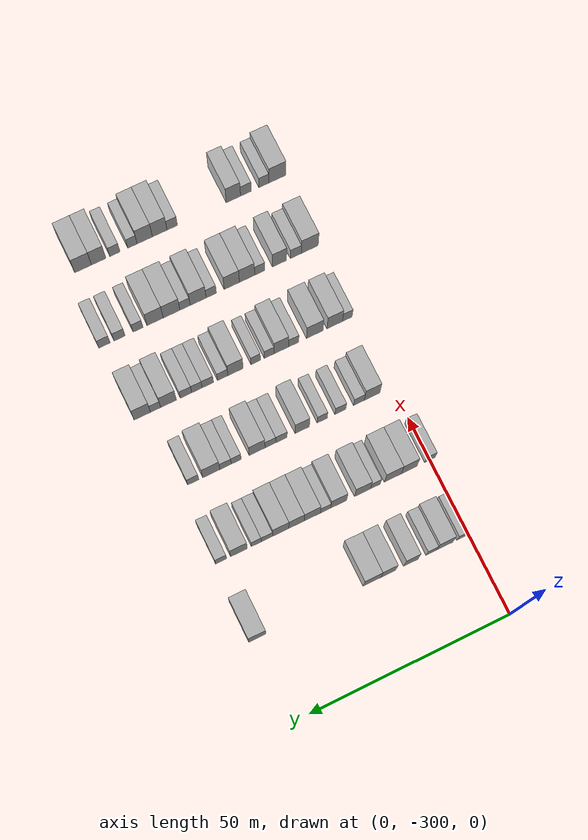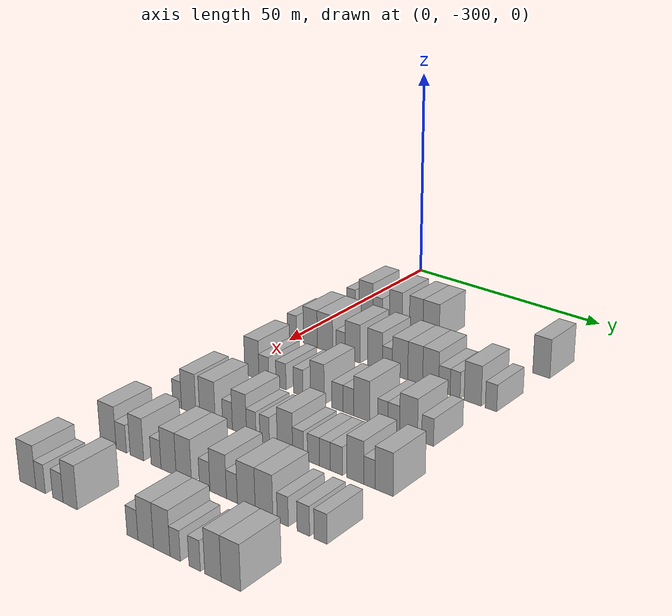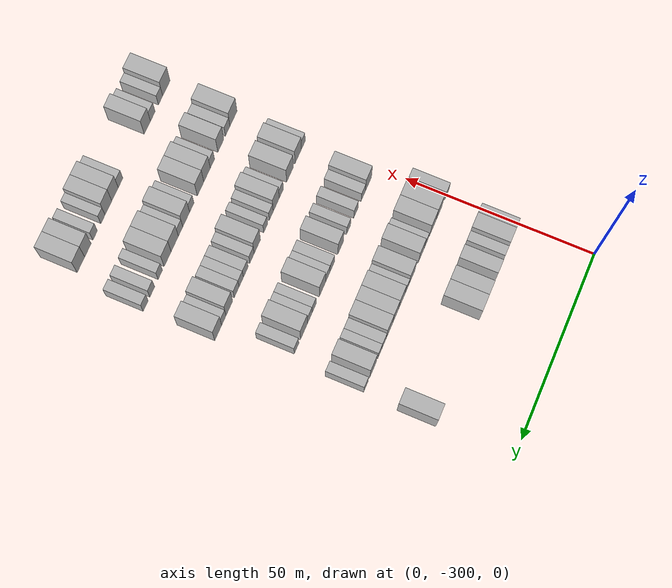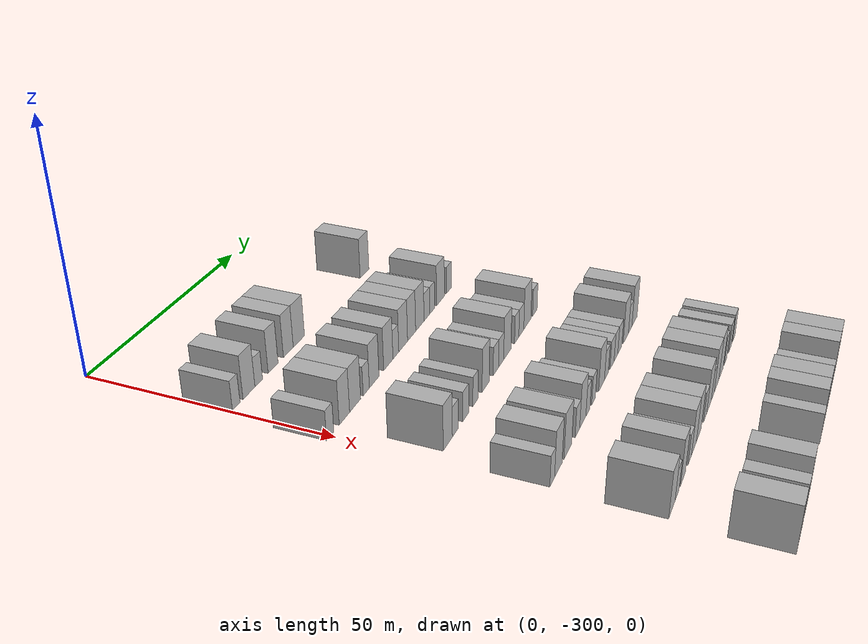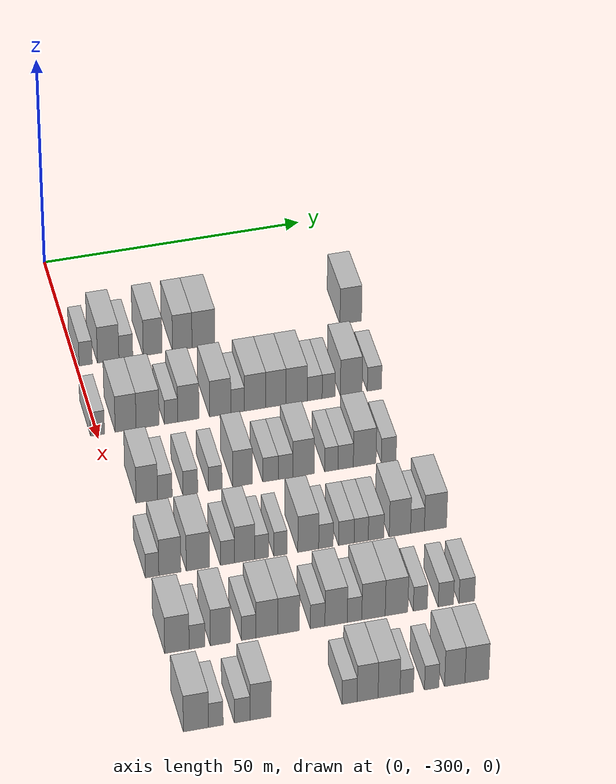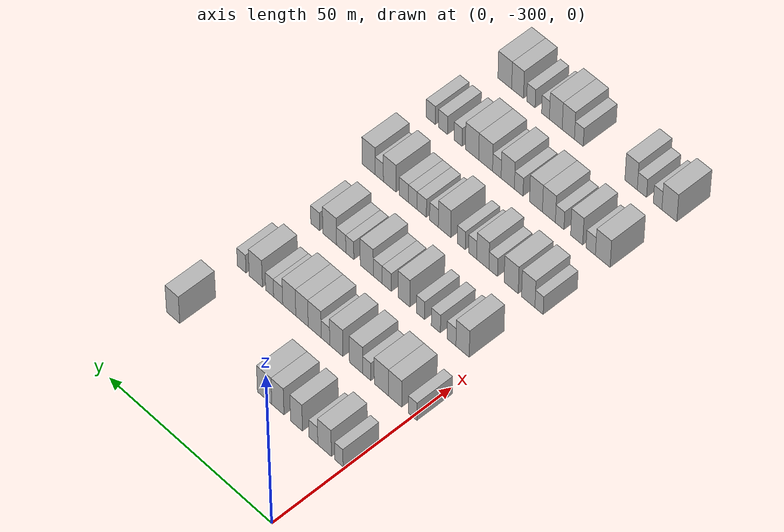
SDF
<sdf version="1.6">
 <world name="default">
  <model name="building_13">
   <static>1</static>
   <pose>25.0000 -298.2506 0 0.000000 0.000000 0.000000</pose>
   <link name="link">
    <pose>0 0 3.00 0 0 0</pose>
    <collision name="collision"><geometry><box><size>10.0000 2.5081 6.0000</size></box></geometry></collision>
    <visual name="visual">
     <cast_shadows>0</cast_shadows>
     <geometry><box><size>10.0000 2.5081 6.0000</size></box></geometry>
     <material>
      <script>
       <uri>model://HANNAS_wall/materials/scripts</uri>
       <uri>model://HANNAS_wall/materials/textures</uri>
       <name>vrc/HANNAS_wall</name>
      </script>
     </material>
    </visual>
   </link>
  </model>
  <model name="building_14">
   <static>1</static>
   <pose>25.0000 -293.9473 0 0.000000 0.000000 0.000000</pose>
   <link name="link">
    <pose>0 0 4.50 0 0 0</pose>
    <collision name="collision"><geometry><box><size>10.0000 4.0985 9.0000</size></box></geometry></collision>
    <visual name="visual">
     <cast_shadows>0</cast_shadows>
     <geometry><box><size>10.0000 4.0985 9.0000</size></box></geometry>
     <material>
      <script>
       <uri>model://HANNAS_wall/materials/scripts</uri>
       <uri>model://HANNAS_wall/materials/textures</uri>
       <name>vrc/HANNAS_wall</name>
      </script>
     </material>
    </visual>
   </link>
  </model>
  <model name="building_15">
   <static>1</static>
   <pose>25.0000 -290.5645 0 0.000000 0.000000 0.000000</pose>
   <link name="link">
    <pose>0 0 3.00 0 0 0</pose>
    <collision name="collision"><geometry><box><size>10.0000 2.6670 6.0000</size></box></geometry></collision>
    <visual name="visual">
     <cast_shadows>0</cast_shadows>
     <geometry><box><size>10.0000 2.6670 6.0000</size></box></geometry>
     <material>
      <script>
       <uri>model://HANNAS_wall/materials/scripts</uri>
       <uri>model://HANNAS_wall/materials/textures</uri>
       <name>vrc/HANNAS_wall</name>
      </script>
     </material>
    </visual>
   </link>
  </model>
  <model name="building_16">
   <static>1</static>
   <pose>25.0000 -285.4173 0 0.000000 0.000000 0.000000</pose>
   <link name="link">
    <pose>0 0 4.50 0 0 0</pose>
    <collision name="collision"><geometry><box><size>10.0000 3.6275 9.0000</size></box></geometry></collision>
    <visual name="visual">
     <cast_shadows>0</cast_shadows>
     <geometry><box><size>10.0000 3.6275 9.0000</size></box></geometry>
     <material>
      <script>
       <uri>model://HANNAS_wall/materials/scripts</uri>
       <uri>model://HANNAS_wall/materials/textures</uri>
       <name>vrc/HANNAS_wall</name>
      </script>
     </material>
    </visual>
   </link>
  </model>
  <model name="building_17">
   <static>1</static>
   <pose>25.0000 -279.7335 0 0.000000 0.000000 0.000000</pose>
   <link name="link">
    <pose>0 0 4.50 0 0 0</pose>
    <collision name="collision"><geometry><box><size>10.0000 3.7400 9.0000</size></box></geometry></collision>
    <visual name="visual">
     <cast_shadows>0</cast_shadows>
     <geometry><box><size>10.0000 3.7400 9.0000</size></box></geometry>
     <material>
      <script>
       <uri>model://HANNAS_wall/materials/scripts</uri>
       <uri>model://HANNAS_wall/materials/textures</uri>
       <name>vrc/HANNAS_wall</name>
      </script>
     </material>
    </visual>
   </link>
  </model>
  <model name="building_18">
   <static>1</static>
   <pose>25.0000 -275.6532 0 0.000000 0.000000 0.000000</pose>
   <link name="link">
    <pose>0 0 4.50 0 0 0</pose>
    <collision name="collision"><geometry><box><size>10.0000 4.4206 9.0000</size></box></geometry></collision>
    <visual name="visual">
     <cast_shadows>0</cast_shadows>
     <geometry><box><size>10.0000 4.4206 9.0000</size></box></geometry>
     <material>
      <script>
       <uri>model://HANNAS_wall/materials/scripts</uri>
       <uri>model://HANNAS_wall/materials/textures</uri>
       <name>vrc/HANNAS_wall</name>
      </script>
     </material>
    </visual>
   </link>
  </model>
  <model name="building_19">
   <static>1</static>
   <pose>25.0000 -247.1640 0 0.000000 0.000000 0.000000</pose>
   <link name="link">
    <pose>0 0 4.50 0 0 0</pose>
    <collision name="collision"><geometry><box><size>10.0000 4.1859 9.0000</size></box></geometry></collision>
    <visual name="visual">
     <cast_shadows>0</cast_shadows>
     <geometry><box><size>10.0000 4.1859 9.0000</size></box></geometry>
     <material>
      <script>
       <uri>model://HANNAS_wall/materials/scripts</uri>
       <uri>model://HANNAS_wall/materials/textures</uri>
       <name>vrc/HANNAS_wall</name>
      </script>
     </material>
    </visual>
   </link>
  </model>
  <model name="building_178">
   <static>1</static>
   <pose>44.0000 -299.9823 0 0.000000 0.000000 0.000000</pose>
   <link name="link">
    <pose>0 0 3.00 0 0 0</pose>
    <collision name="collision"><geometry><box><size>10.0000 2.6246 6.0000</size></box></geometry></collision>
    <visual name="visual">
     <cast_shadows>0</cast_shadows>
     <geometry><box><size>10.0000 2.6246 6.0000</size></box></geometry>
     <material>
      <script>
       <uri>model://HANNAS_wall/materials/scripts</uri>
       <uri>model://HANNAS_wall/materials/textures</uri>
       <name>vrc/HANNAS_wall</name>
      </script>
     </material>
    </visual>
   </link>
  </model>
  <model name="building_179">
   <static>1</static>
   <pose>44.0000 -294.6952 0 0.000000 0.000000 0.000000</pose>
   <link name="link">
    <pose>0 0 4.50 0 0 0</pose>
    <collision name="collision"><geometry><box><size>10.0000 3.9496 9.0000</size></box></geometry></collision>
    <visual name="visual">
     <cast_shadows>0</cast_shadows>
     <geometry><box><size>10.0000 3.9496 9.0000</size></box></geometry>
     <material>
      <script>
       <uri>model://HANNAS_wall/materials/scripts</uri>
       <uri>model://HANNAS_wall/materials/textures</uri>
       <name>vrc/HANNAS_wall</name>
      </script>
     </material>
    </visual>
   </link>
  </model>
  <model name="building_180">
   <static>1</static>
   <pose>44.0000 -290.5480 0 0.000000 0.000000 0.000000</pose>
   <link name="link">
    <pose>0 0 4.50 0 0 0</pose>
    <collision name="collision"><geometry><box><size>10.0000 4.3446 9.0000</size></box></geometry></collision>
    <visual name="visual">
     <cast_shadows>0</cast_shadows>
     <geometry><box><size>10.0000 4.3446 9.0000</size></box></geometry>
     <material>
      <script>
       <uri>model://HANNAS_wall/materials/scripts</uri>
       <uri>model://HANNAS_wall/materials/textures</uri>
       <name>vrc/HANNAS_wall</name>
      </script>
     </material>
    </visual>
   </link>
  </model>
  <model name="building_181">
   <static>1</static>
   <pose>44.0000 -286.1189 0 0.000000 0.000000 0.000000</pose>
   <link name="link">
    <pose>0 0 3.00 0 0 0</pose>
    <collision name="collision"><geometry><box><size>10.0000 2.5136 6.0000</size></box></geometry></collision>
    <visual name="visual">
     <cast_shadows>0</cast_shadows>
     <geometry><box><size>10.0000 2.5136 6.0000</size></box></geometry>
     <material>
      <script>
       <uri>model://HANNAS_wall/materials/scripts</uri>
       <uri>model://HANNAS_wall/materials/textures</uri>
       <name>vrc/HANNAS_wall</name>
      </script>
     </material>
    </visual>
   </link>
  </model>
  <model name="building_182">
   <static>1</static>
   <pose>44.0000 -282.8443 0 0.000000 0.000000 0.000000</pose>
   <link name="link">
    <pose>0 0 4.50 0 0 0</pose>
    <collision name="collision"><geometry><box><size>10.0000 4.0356 9.0000</size></box></geometry></collision>
    <visual name="visual">
     <cast_shadows>0</cast_shadows>
     <geometry><box><size>10.0000 4.0356 9.0000</size></box></geometry>
     <material>
      <script>
       <uri>model://HANNAS_wall/materials/scripts</uri>
       <uri>model://HANNAS_wall/materials/textures</uri>
       <name>vrc/HANNAS_wall</name>
      </script>
     </material>
    </visual>
   </link>
  </model>
  <model name="building_183">
   <static>1</static>
   <pose>44.0000 -276.8146 0 0.000000 0.000000 0.000000</pose>
   <link name="link">
    <pose>0 0 4.50 0 0 0</pose>
    <collision name="collision"><geometry><box><size>10.0000 4.0238 9.0000</size></box></geometry></collision>
    <visual name="visual">
     <cast_shadows>0</cast_shadows>
     <geometry><box><size>10.0000 4.0238 9.0000</size></box></geometry>
     <material>
      <script>
       <uri>model://HANNAS_wall/materials/scripts</uri>
       <uri>model://HANNAS_wall/materials/textures</uri>
       <name>vrc/HANNAS_wall</name>
      </script>
     </material>
    </visual>
   </link>
  </model>
  <model name="building_184">
   <static>1</static>
   <pose>44.0000 -273.4958 0 0.000000 0.000000 0.000000</pose>
   <link name="link">
    <pose>0 0 3.00 0 0 0</pose>
    <collision name="collision"><geometry><box><size>10.0000 2.6136 6.0000</size></box></geometry></collision>
    <visual name="visual">
     <cast_shadows>0</cast_shadows>
     <geometry><box><size>10.0000 2.6136 6.0000</size></box></geometry>
     <material>
      <script>
       <uri>model://HANNAS_wall/materials/scripts</uri>
       <uri>model://HANNAS_wall/materials/textures</uri>
       <name>vrc/HANNAS_wall</name>
      </script>
     </material>
    </visual>
   </link>
  </model>
  <model name="building_185">
   <static>1</static>
   <pose>44.0000 -270.1656 0 0.000000 0.000000 0.000000</pose>
   <link name="link">
    <pose>0 0 4.50 0 0 0</pose>
    <collision name="collision"><geometry><box><size>10.0000 4.0468 9.0000</size></box></geometry></collision>
    <visual name="visual">
     <cast_shadows>0</cast_shadows>
     <geometry><box><size>10.0000 4.0468 9.0000</size></box></geometry>
     <material>
      <script>
       <uri>model://HANNAS_wall/materials/scripts</uri>
       <uri>model://HANNAS_wall/materials/textures</uri>
       <name>vrc/HANNAS_wall</name>
      </script>
     </material>
    </visual>
   </link>
  </model>
  <model name="building_186">
   <static>1</static>
   <pose>44.0000 -266.2223 0 0.000000 0.000000 0.000000</pose>
   <link name="link">
    <pose>0 0 4.50 0 0 0</pose>
    <collision name="collision"><geometry><box><size>10.0000 3.8398 9.0000</size></box></geometry></collision>
    <visual name="visual">
     <cast_shadows>0</cast_shadows>
     <geometry><box><size>10.0000 3.8398 9.0000</size></box></geometry>
     <material>
      <script>
       <uri>model://HANNAS_wall/materials/scripts</uri>
       <uri>model://HANNAS_wall/materials/textures</uri>
       <name>vrc/HANNAS_wall</name>
      </script>
     </material>
    </visual>
   </link>
  </model>
  <model name="building_187">
   <static>1</static>
   <pose>44.0000 -262.2698 0 0.000000 0.000000 0.000000</pose>
   <link name="link">
    <pose>0 0 4.50 0 0 0</pose>
    <collision name="collision"><geometry><box><size>10.0000 4.0650 9.0000</size></box></geometry></collision>
    <visual name="visual">
     <cast_shadows>0</cast_shadows>
     <geometry><box><size>10.0000 4.0650 9.0000</size></box></geometry>
     <material>
      <script>
       <uri>model://HANNAS_wall/materials/scripts</uri>
       <uri>model://HANNAS_wall/materials/textures</uri>
       <name>vrc/HANNAS_wall</name>
      </script>
     </material>
    </visual>
   </link>
  </model>
  <model name="building_188">
   <static>1</static>
   <pose>44.0000 -258.8144 0 0.000000 0.000000 0.000000</pose>
   <link name="link">
    <pose>0 0 3.00 0 0 0</pose>
    <collision name="collision"><geometry><box><size>10.0000 2.8457 6.0000</size></box></geometry></collision>
    <visual name="visual">
     <cast_shadows>0</cast_shadows>
     <geometry><box><size>10.0000 2.8457 6.0000</size></box></geometry>
     <material>
      <script>
       <uri>model://HANNAS_wall/materials/scripts</uri>
       <uri>model://HANNAS_wall/materials/textures</uri>
       <name>vrc/HANNAS_wall</name>
      </script>
     </material>
    </visual>
   </link>
  </model>
  <model name="building_189">
   <static>1</static>
   <pose>44.0000 -256.1540 0 0.000000 0.000000 0.000000</pose>
   <link name="link">
    <pose>0 0 3.00 0 0 0</pose>
    <collision name="collision"><geometry><box><size>10.0000 2.4753 6.0000</size></box></geometry></collision>
    <visual name="visual">
     <cast_shadows>0</cast_shadows>
     <geometry><box><size>10.0000 2.4753 6.0000</size></box></geometry>
     <material>
      <script>
       <uri>model://HANNAS_wall/materials/scripts</uri>
       <uri>model://HANNAS_wall/materials/textures</uri>
       <name>vrc/HANNAS_wall</name>
      </script>
     </material>
    </visual>
   </link>
  </model>
  <model name="building_190">
   <static>1</static>
   <pose>44.0000 -251.8367 0 0.000000 0.000000 0.000000</pose>
   <link name="link">
    <pose>0 0 4.50 0 0 0</pose>
    <collision name="collision"><geometry><box><size>10.0000 4.1592 9.0000</size></box></geometry></collision>
    <visual name="visual">
     <cast_shadows>0</cast_shadows>
     <geometry><box><size>10.0000 4.1592 9.0000</size></box></geometry>
     <material>
      <script>
       <uri>model://HANNAS_wall/materials/scripts</uri>
       <uri>model://HANNAS_wall/materials/textures</uri>
       <name>vrc/HANNAS_wall</name>
      </script>
     </material>
    </visual>
   </link>
  </model>
  <model name="building_191">
   <static>1</static>
   <pose>44.0000 -247.3892 0 0.000000 0.000000 0.000000</pose>
   <link name="link">
    <pose>0 0 3.00 0 0 0</pose>
    <collision name="collision"><geometry><box><size>10.0000 2.7358 6.0000</size></box></geometry></collision>
    <visual name="visual">
     <cast_shadows>0</cast_shadows>
     <geometry><box><size>10.0000 2.7358 6.0000</size></box></geometry>
     <material>
      <script>
       <uri>model://HANNAS_wall/materials/scripts</uri>
       <uri>model://HANNAS_wall/materials/textures</uri>
       <name>vrc/HANNAS_wall</name>
      </script>
     </material>
    </visual>
   </link>
  </model>
  <model name="building_348">
   <static>1</static>
   <pose>63.0000 -294.8601 0 0.000000 0.000000 0.000000</pose>
   <link name="link">
    <pose>0 0 4.50 0 0 0</pose>
    <collision name="collision"><geometry><box><size>10.0000 3.9969 9.0000</size></box></geometry></collision>
    <visual name="visual">
     <cast_shadows>0</cast_shadows>
     <geometry><box><size>10.0000 3.9969 9.0000</size></box></geometry>
     <material>
      <script>
       <uri>model://HANNAS_wall/materials/scripts</uri>
       <uri>model://HANNAS_wall/materials/textures</uri>
       <name>vrc/HANNAS_wall</name>
      </script>
     </material>
    </visual>
   </link>
  </model>
  <model name="building_349">
   <static>1</static>
   <pose>63.0000 -291.5007 0 0.000000 0.000000 0.000000</pose>
   <link name="link">
    <pose>0 0 3.00 0 0 0</pose>
    <collision name="collision"><geometry><box><size>10.0000 2.7219 6.0000</size></box></geometry></collision>
    <visual name="visual">
     <cast_shadows>0</cast_shadows>
     <geometry><box><size>10.0000 2.7219 6.0000</size></box></geometry>
     <material>
      <script>
       <uri>model://HANNAS_wall/materials/scripts</uri>
       <uri>model://HANNAS_wall/materials/textures</uri>
       <name>vrc/HANNAS_wall</name>
      </script>
     </material>
    </visual>
   </link>
  </model>
  <model name="building_350">
   <static>1</static>
   <pose>63.0000 -286.7607 0 0.000000 0.000000 0.000000</pose>
   <link name="link">
    <pose>0 0 3.00 0 0 0</pose>
    <collision name="collision"><geometry><box><size>10.0000 2.7582 6.0000</size></box></geometry></collision>
    <visual name="visual">
     <cast_shadows>0</cast_shadows>
     <geometry><box><size>10.0000 2.7582 6.0000</size></box></geometry>
     <material>
      <script>
       <uri>model://HANNAS_wall/materials/scripts</uri>
       <uri>model://HANNAS_wall/materials/textures</uri>
       <name>vrc/HANNAS_wall</name>
      </script>
     </material>
    </visual>
   </link>
  </model>
  <model name="building_351">
   <static>1</static>
   <pose>63.0000 -282.1123 0 0.000000 0.000000 0.000000</pose>
   <link name="link">
    <pose>0 0 3.00 0 0 0</pose>
    <collision name="collision"><geometry><box><size>10.0000 2.5385 6.0000</size></box></geometry></collision>
    <visual name="visual">
     <cast_shadows>0</cast_shadows>
     <geometry><box><size>10.0000 2.5385 6.0000</size></box></geometry>
     <material>
      <script>
       <uri>model://HANNAS_wall/materials/scripts</uri>
       <uri>model://HANNAS_wall/materials/textures</uri>
       <name>vrc/HANNAS_wall</name>
      </script>
     </material>
    </visual>
   </link>
  </model>
  <model name="building_352">
   <static>1</static>
   <pose>63.0000 -277.0222 0 0.000000 0.000000 0.000000</pose>
   <link name="link">
    <pose>0 0 4.50 0 0 0</pose>
    <collision name="collision"><geometry><box><size>10.0000 3.6417 9.0000</size></box></geometry></collision>
    <visual name="visual">
     <cast_shadows>0</cast_shadows>
     <geometry><box><size>10.0000 3.6417 9.0000</size></box></geometry>
     <material>
      <script>
       <uri>model://HANNAS_wall/materials/scripts</uri>
       <uri>model://HANNAS_wall/materials/textures</uri>
       <name>vrc/HANNAS_wall</name>
      </script>
     </material>
    </visual>
   </link>
  </model>
  <model name="building_353">
   <static>1</static>
   <pose>63.0000 -271.7649 0 0.000000 0.000000 0.000000</pose>
   <link name="link">
    <pose>0 0 3.00 0 0 0</pose>
    <collision name="collision"><geometry><box><size>10.0000 2.8729 6.0000</size></box></geometry></collision>
    <visual name="visual">
     <cast_shadows>0</cast_shadows>
     <geometry><box><size>10.0000 2.8729 6.0000</size></box></geometry>
     <material>
      <script>
       <uri>model://HANNAS_wall/materials/scripts</uri>
       <uri>model://HANNAS_wall/materials/textures</uri>
       <name>vrc/HANNAS_wall</name>
      </script>
     </material>
    </visual>
   </link>
  </model>
  <model name="building_354">
   <static>1</static>
   <pose>63.0000 -268.9666 0 0.000000 0.000000 0.000000</pose>
   <link name="link">
    <pose>0 0 3.00 0 0 0</pose>
    <collision name="collision"><geometry><box><size>10.0000 2.7236 6.0000</size></box></geometry></collision>
    <visual name="visual">
     <cast_shadows>0</cast_shadows>
     <geometry><box><size>10.0000 2.7236 6.0000</size></box></geometry>
     <material>
      <script>
       <uri>model://HANNAS_wall/materials/scripts</uri>
       <uri>model://HANNAS_wall/materials/textures</uri>
       <name>vrc/HANNAS_wall</name>
      </script>
     </material>
    </visual>
   </link>
  </model>
  <model name="building_355">
   <static>1</static>
   <pose>63.0000 -265.5929 0 0.000000 0.000000 0.000000</pose>
   <link name="link">
    <pose>0 0 4.50 0 0 0</pose>
    <collision name="collision"><geometry><box><size>10.0000 4.0237 9.0000</size></box></geometry></collision>
    <visual name="visual">
     <cast_shadows>0</cast_shadows>
     <geometry><box><size>10.0000 4.0237 9.0000</size></box></geometry>
     <material>
      <script>
       <uri>model://HANNAS_wall/materials/scripts</uri>
       <uri>model://HANNAS_wall/materials/textures</uri>
       <name>vrc/HANNAS_wall</name>
      </script>
     </material>
    </visual>
   </link>
  </model>
  <model name="building_356">
   <static>1</static>
   <pose>63.0000 -260.3390 0 0.000000 0.000000 0.000000</pose>
   <link name="link">
    <pose>0 0 3.00 0 0 0</pose>
    <collision name="collision"><geometry><box><size>10.0000 2.4841 6.0000</size></box></geometry></collision>
    <visual name="visual">
     <cast_shadows>0</cast_shadows>
     <geometry><box><size>10.0000 2.4841 6.0000</size></box></geometry>
     <material>
      <script>
       <uri>model://HANNAS_wall/materials/scripts</uri>
       <uri>model://HANNAS_wall/materials/textures</uri>
       <name>vrc/HANNAS_wall</name>
      </script>
     </material>
    </visual>
   </link>
  </model>
  <model name="building_357">
   <static>1</static>
   <pose>63.0000 -257.6478 0 0.000000 0.000000 0.000000</pose>
   <link name="link">
    <pose>0 0 3.00 0 0 0</pose>
    <collision name="collision"><geometry><box><size>10.0000 2.8984 6.0000</size></box></geometry></collision>
    <visual name="visual">
     <cast_shadows>0</cast_shadows>
     <geometry><box><size>10.0000 2.8984 6.0000</size></box></geometry>
     <material>
      <script>
       <uri>model://HANNAS_wall/materials/scripts</uri>
       <uri>model://HANNAS_wall/materials/textures</uri>
       <name>vrc/HANNAS_wall</name>
      </script>
     </material>
    </visual>
   </link>
  </model>
  <model name="building_358">
   <static>1</static>
   <pose>63.0000 -254.0579 0 0.000000 0.000000 0.000000</pose>
   <link name="link">
    <pose>0 0 4.50 0 0 0</pose>
    <collision name="collision"><geometry><box><size>10.0000 4.2814 9.0000</size></box></geometry></collision>
    <visual name="visual">
     <cast_shadows>0</cast_shadows>
     <geometry><box><size>10.0000 4.2814 9.0000</size></box></geometry>
     <material>
      <script>
       <uri>model://HANNAS_wall/materials/scripts</uri>
       <uri>model://HANNAS_wall/materials/textures</uri>
       <name>vrc/HANNAS_wall</name>
      </script>
     </material>
    </visual>
   </link>
  </model>
  <model name="building_359">
   <static>1</static>
   <pose>63.0000 -249.5177 0 0.000000 0.000000 0.000000</pose>
   <link name="link">
    <pose>0 0 3.00 0 0 0</pose>
    <collision name="collision"><geometry><box><size>10.0000 2.7989 6.0000</size></box></geometry></collision>
    <visual name="visual">
     <cast_shadows>0</cast_shadows>
     <geometry><box><size>10.0000 2.7989 6.0000</size></box></geometry>
     <material>
      <script>
       <uri>model://HANNAS_wall/materials/scripts</uri>
       <uri>model://HANNAS_wall/materials/textures</uri>
       <name>vrc/HANNAS_wall</name>
      </script>
     </material>
    </visual>
   </link>
  </model>
  <model name="building_519">
   <static>1</static>
   <pose>82.0000 -298.0562 0 0.000000 0.000000 0.000000</pose>
   <link name="link">
    <pose>0 0 3.00 0 0 0</pose>
    <collision name="collision"><geometry><box><size>10.0000 2.4638 6.0000</size></box></geometry></collision>
    <visual name="visual">
     <cast_shadows>0</cast_shadows>
     <geometry><box><size>10.0000 2.4638 6.0000</size></box></geometry>
     <material>
      <script>
       <uri>model://HANNAS_wall/materials/scripts</uri>
       <uri>model://HANNAS_wall/materials/textures</uri>
       <name>vrc/HANNAS_wall</name>
      </script>
     </material>
    </visual>
   </link>
  </model>
  <model name="building_520">
   <static>1</static>
   <pose>82.0000 -294.8078 0 0.000000 0.000000 0.000000</pose>
   <link name="link">
    <pose>0 0 4.50 0 0 0</pose>
    <collision name="collision"><geometry><box><size>10.0000 4.0329 9.0000</size></box></geometry></collision>
    <visual name="visual">
     <cast_shadows>0</cast_shadows>
     <geometry><box><size>10.0000 4.0329 9.0000</size></box></geometry>
     <material>
      <script>
       <uri>model://HANNAS_wall/materials/scripts</uri>
       <uri>model://HANNAS_wall/materials/textures</uri>
       <name>vrc/HANNAS_wall</name>
      </script>
     </material>
    </visual>
   </link>
  </model>
  <model name="building_521">
   <static>1</static>
   <pose>82.0000 -289.6540 0 0.000000 0.000000 0.000000</pose>
   <link name="link">
    <pose>0 0 4.50 0 0 0</pose>
    <collision name="collision"><geometry><box><size>10.0000 4.2747 9.0000</size></box></geometry></collision>
    <visual name="visual">
     <cast_shadows>0</cast_shadows>
     <geometry><box><size>10.0000 4.2747 9.0000</size></box></geometry>
     <material>
      <script>
       <uri>model://HANNAS_wall/materials/scripts</uri>
       <uri>model://HANNAS_wall/materials/textures</uri>
       <name>vrc/HANNAS_wall</name>
      </script>
     </material>
    </visual>
   </link>
  </model>
  <model name="building_522">
   <static>1</static>
   <pose>82.0000 -284.2152 0 0.000000 0.000000 0.000000</pose>
   <link name="link">
    <pose>0 0 3.00 0 0 0</pose>
    <collision name="collision"><geometry><box><size>10.0000 2.6030 6.0000</size></box></geometry></collision>
    <visual name="visual">
     <cast_shadows>0</cast_shadows>
     <geometry><box><size>10.0000 2.6030 6.0000</size></box></geometry>
     <material>
      <script>
       <uri>model://HANNAS_wall/materials/scripts</uri>
       <uri>model://HANNAS_wall/materials/textures</uri>
       <name>vrc/HANNAS_wall</name>
      </script>
     </material>
    </visual>
   </link>
  </model>
  <model name="building_523">
   <static>1</static>
   <pose>82.0000 -281.0442 0 0.000000 0.000000 0.000000</pose>
   <link name="link">
    <pose>0 0 4.50 0 0 0</pose>
    <collision name="collision"><geometry><box><size>10.0000 3.7390 9.0000</size></box></geometry></collision>
    <visual name="visual">
     <cast_shadows>0</cast_shadows>
     <geometry><box><size>10.0000 3.7390 9.0000</size></box></geometry>
     <material>
      <script>
       <uri>model://HANNAS_wall/materials/scripts</uri>
       <uri>model://HANNAS_wall/materials/textures</uri>
       <name>vrc/HANNAS_wall</name>
      </script>
     </material>
    </visual>
   </link>
  </model>
  <model name="building_524">
   <static>1</static>
   <pose>82.0000 -277.9280 0 0.000000 0.000000 0.000000</pose>
   <link name="link">
    <pose>0 0 3.00 0 0 0</pose>
    <collision name="collision"><geometry><box><size>10.0000 2.4935 6.0000</size></box></geometry></collision>
    <visual name="visual">
     <cast_shadows>0</cast_shadows>
     <geometry><box><size>10.0000 2.4935 6.0000</size></box></geometry>
     <material>
      <script>
       <uri>model://HANNAS_wall/materials/scripts</uri>
       <uri>model://HANNAS_wall/materials/textures</uri>
       <name>vrc/HANNAS_wall</name>
      </script>
     </material>
    </visual>
   </link>
  </model>
  <model name="building_525">
   <static>1</static>
   <pose>82.0000 -274.4676 0 0.000000 0.000000 0.000000</pose>
   <link name="link">
    <pose>0 0 3.00 0 0 0</pose>
    <collision name="collision"><geometry><box><size>10.0000 2.4273 6.0000</size></box></geometry></collision>
    <visual name="visual">
     <cast_shadows>0</cast_shadows>
     <geometry><box><size>10.0000 2.4273 6.0000</size></box></geometry>
     <material>
      <script>
       <uri>model://HANNAS_wall/materials/scripts</uri>
       <uri>model://HANNAS_wall/materials/textures</uri>
       <name>vrc/HANNAS_wall</name>
      </script>
     </material>
    </visual>
   </link>
  </model>
  <model name="building_526">
   <static>1</static>
   <pose>82.0000 -269.3223 0 0.000000 0.000000 0.000000</pose>
   <link name="link">
    <pose>0 0 4.50 0 0 0</pose>
    <collision name="collision"><geometry><box><size>10.0000 3.8633 9.0000</size></box></geometry></collision>
    <visual name="visual">
     <cast_shadows>0</cast_shadows>
     <geometry><box><size>10.0000 3.8633 9.0000</size></box></geometry>
     <material>
      <script>
       <uri>model://HANNAS_wall/materials/scripts</uri>
       <uri>model://HANNAS_wall/materials/textures</uri>
       <name>vrc/HANNAS_wall</name>
      </script>
     </material>
    </visual>
   </link>
  </model>
  <model name="building_527">
   <static>1</static>
   <pose>82.0000 -266.0506 0 0.000000 0.000000 0.000000</pose>
   <link name="link">
    <pose>0 0 3.00 0 0 0</pose>
    <collision name="collision"><geometry><box><size>10.0000 2.6801 6.0000</size></box></geometry></collision>
    <visual name="visual">
     <cast_shadows>0</cast_shadows>
     <geometry><box><size>10.0000 2.6801 6.0000</size></box></geometry>
     <material>
      <script>
       <uri>model://HANNAS_wall/materials/scripts</uri>
       <uri>model://HANNAS_wall/materials/textures</uri>
       <name>vrc/HANNAS_wall</name>
      </script>
     </material>
    </visual>
   </link>
  </model>
  <model name="building_528">
   <static>1</static>
   <pose>82.0000 -262.2659 0 0.000000 0.000000 0.000000</pose>
   <link name="link">
    <pose>0 0 3.00 0 0 0</pose>
    <collision name="collision"><geometry><box><size>10.0000 2.8893 6.0000</size></box></geometry></collision>
    <visual name="visual">
     <cast_shadows>0</cast_shadows>
     <geometry><box><size>10.0000 2.8893 6.0000</size></box></geometry>
     <material>
      <script>
       <uri>model://HANNAS_wall/materials/scripts</uri>
       <uri>model://HANNAS_wall/materials/textures</uri>
       <name>vrc/HANNAS_wall</name>
      </script>
     </material>
    </visual>
   </link>
  </model>
  <model name="building_529">
   <static>1</static>
   <pose>82.0000 -259.5054 0 0.000000 0.000000 0.000000</pose>
   <link name="link">
    <pose>0 0 3.00 0 0 0</pose>
    <collision name="collision"><geometry><box><size>10.0000 2.6318 6.0000</size></box></geometry></collision>
    <visual name="visual">
     <cast_shadows>0</cast_shadows>
     <geometry><box><size>10.0000 2.6318 6.0000</size></box></geometry>
     <material>
      <script>
       <uri>model://HANNAS_wall/materials/scripts</uri>
       <uri>model://HANNAS_wall/materials/textures</uri>
       <name>vrc/HANNAS_wall</name>
      </script>
     </material>
    </visual>
   </link>
  </model>
  <model name="building_530">
   <static>1</static>
   <pose>82.0000 -256.7408 0 0.000000 0.000000 0.000000</pose>
   <link name="link">
    <pose>0 0 3.00 0 0 0</pose>
    <collision name="collision"><geometry><box><size>10.0000 2.8974 6.0000</size></box></geometry></collision>
    <visual name="visual">
     <cast_shadows>0</cast_shadows>
     <geometry><box><size>10.0000 2.8974 6.0000</size></box></geometry>
     <material>
      <script>
       <uri>model://HANNAS_wall/materials/scripts</uri>
       <uri>model://HANNAS_wall/materials/textures</uri>
       <name>vrc/HANNAS_wall</name>
      </script>
     </material>
    </visual>
   </link>
  </model>
  <model name="building_531">
   <static>1</static>
   <pose>82.0000 -252.3028 0 0.000000 0.000000 0.000000</pose>
   <link name="link">
    <pose>0 0 4.50 0 0 0</pose>
    <collision name="collision"><geometry><box><size>10.0000 3.9787 9.0000</size></box></geometry></collision>
    <visual name="visual">
     <cast_shadows>0</cast_shadows>
     <geometry><box><size>10.0000 3.9787 9.0000</size></box></geometry>
     <material>
      <script>
       <uri>model://HANNAS_wall/materials/scripts</uri>
       <uri>model://HANNAS_wall/materials/textures</uri>
       <name>vrc/HANNAS_wall</name>
      </script>
     </material>
    </visual>
   </link>
  </model>
  <model name="building_532">
   <static>1</static>
   <pose>82.0000 -249.0275 0 0.000000 0.000000 0.000000</pose>
   <link name="link">
    <pose>0 0 3.00 0 0 0</pose>
    <collision name="collision"><geometry><box><size>10.0000 2.5719 6.0000</size></box></geometry></collision>
    <visual name="visual">
     <cast_shadows>0</cast_shadows>
     <geometry><box><size>10.0000 2.5719 6.0000</size></box></geometry>
     <material>
      <script>
       <uri>model://HANNAS_wall/materials/scripts</uri>
       <uri>model://HANNAS_wall/materials/textures</uri>
       <name>vrc/HANNAS_wall</name>
      </script>
     </material>
    </visual>
   </link>
  </model>
  <model name="building_533">
   <static>1</static>
   <pose>82.0000 -245.6763 0 0.000000 0.000000 0.000000</pose>
   <link name="link">
    <pose>0 0 4.50 0 0 0</pose>
    <collision name="collision"><geometry><box><size>10.0000 4.1304 9.0000</size></box></geometry></collision>
    <visual name="visual">
     <cast_shadows>0</cast_shadows>
     <geometry><box><size>10.0000 4.1304 9.0000</size></box></geometry>
     <material>
      <script>
       <uri>model://HANNAS_wall/materials/scripts</uri>
       <uri>model://HANNAS_wall/materials/textures</uri>
       <name>vrc/HANNAS_wall</name>
      </script>
     </material>
    </visual>
   </link>
  </model>
  <model name="building_699">
   <static>1</static>
   <pose>101.0000 -297.7552 0 0.000000 0.000000 0.000000</pose>
   <link name="link">
    <pose>0 0 4.50 0 0 0</pose>
    <collision name="collision"><geometry><box><size>10.0000 4.4172 9.0000</size></box></geometry></collision>
    <visual name="visual">
     <cast_shadows>0</cast_shadows>
     <geometry><box><size>10.0000 4.4172 9.0000</size></box></geometry>
     <material>
      <script>
       <uri>model://HANNAS_wall/materials/scripts</uri>
       <uri>model://HANNAS_wall/materials/textures</uri>
       <name>vrc/HANNAS_wall</name>
      </script>
     </material>
    </visual>
   </link>
  </model>
  <model name="building_700">
   <static>1</static>
   <pose>101.0000 -294.1316 0 0.000000 0.000000 0.000000</pose>
   <link name="link">
    <pose>0 0 3.00 0 0 0</pose>
    <collision name="collision"><geometry><box><size>10.0000 2.8299 6.0000</size></box></geometry></collision>
    <visual name="visual">
     <cast_shadows>0</cast_shadows>
     <geometry><box><size>10.0000 2.8299 6.0000</size></box></geometry>
     <material>
      <script>
       <uri>model://HANNAS_wall/materials/scripts</uri>
       <uri>model://HANNAS_wall/materials/textures</uri>
       <name>vrc/HANNAS_wall</name>
      </script>
     </material>
    </visual>
   </link>
  </model>
  <model name="building_701">
   <static>1</static>
   <pose>101.0000 -289.8891 0 0.000000 0.000000 0.000000</pose>
   <link name="link">
    <pose>0 0 4.50 0 0 0</pose>
    <collision name="collision"><geometry><box><size>10.0000 3.6552 9.0000</size></box></geometry></collision>
    <visual name="visual">
     <cast_shadows>0</cast_shadows>
     <geometry><box><size>10.0000 3.6552 9.0000</size></box></geometry>
     <material>
      <script>
       <uri>model://HANNAS_wall/materials/scripts</uri>
       <uri>model://HANNAS_wall/materials/textures</uri>
       <name>vrc/HANNAS_wall</name>
      </script>
     </material>
    </visual>
   </link>
  </model>
  <model name="building_702">
   <static>1</static>
   <pose>101.0000 -284.7538 0 0.000000 0.000000 0.000000</pose>
   <link name="link">
    <pose>0 0 3.00 0 0 0</pose>
    <collision name="collision"><geometry><box><size>10.0000 2.6154 6.0000</size></box></geometry></collision>
    <visual name="visual">
     <cast_shadows>0</cast_shadows>
     <geometry><box><size>10.0000 2.6154 6.0000</size></box></geometry>
     <material>
      <script>
       <uri>model://HANNAS_wall/materials/scripts</uri>
       <uri>model://HANNAS_wall/materials/textures</uri>
       <name>vrc/HANNAS_wall</name>
      </script>
     </material>
    </visual>
   </link>
  </model>
  <model name="building_703">
   <static>1</static>
   <pose>101.0000 -281.4736 0 0.000000 0.000000 0.000000</pose>
   <link name="link">
    <pose>0 0 4.50 0 0 0</pose>
    <collision name="collision"><geometry><box><size>10.0000 3.9449 9.0000</size></box></geometry></collision>
    <visual name="visual">
     <cast_shadows>0</cast_shadows>
     <geometry><box><size>10.0000 3.9449 9.0000</size></box></geometry>
     <material>
      <script>
       <uri>model://HANNAS_wall/materials/scripts</uri>
       <uri>model://HANNAS_wall/materials/textures</uri>
       <name>vrc/HANNAS_wall</name>
      </script>
     </material>
    </visual>
   </link>
  </model>
  <model name="building_704">
   <static>1</static>
   <pose>101.0000 -277.5315 0 0.000000 0.000000 0.000000</pose>
   <link name="link">
    <pose>0 0 4.50 0 0 0</pose>
    <collision name="collision"><geometry><box><size>10.0000 3.9394 9.0000</size></box></geometry></collision>
    <visual name="visual">
     <cast_shadows>0</cast_shadows>
     <geometry><box><size>10.0000 3.9394 9.0000</size></box></geometry>
     <material>
      <script>
       <uri>model://HANNAS_wall/materials/scripts</uri>
       <uri>model://HANNAS_wall/materials/textures</uri>
       <name>vrc/HANNAS_wall</name>
      </script>
     </material>
    </visual>
   </link>
  </model>
  <model name="building_705">
   <static>1</static>
   <pose>101.0000 -272.2368 0 0.000000 0.000000 0.000000</pose>
   <link name="link">
    <pose>0 0 3.00 0 0 0</pose>
    <collision name="collision"><geometry><box><size>10.0000 2.6500 6.0000</size></box></geometry></collision>
    <visual name="visual">
     <cast_shadows>0</cast_shadows>
     <geometry><box><size>10.0000 2.6500 6.0000</size></box></geometry>
     <material>
      <script>
       <uri>model://HANNAS_wall/materials/scripts</uri>
       <uri>model://HANNAS_wall/materials/textures</uri>
       <name>vrc/HANNAS_wall</name>
      </script>
     </material>
    </visual>
   </link>
  </model>
  <model name="building_706">
   <static>1</static>
   <pose>101.0000 -268.8723 0 0.000000 0.000000 0.000000</pose>
   <link name="link">
    <pose>0 0 4.50 0 0 0</pose>
    <collision name="collision"><geometry><box><size>10.0000 4.0790 9.0000</size></box></geometry></collision>
    <visual name="visual">
     <cast_shadows>0</cast_shadows>
     <geometry><box><size>10.0000 4.0790 9.0000</size></box></geometry>
     <material>
      <script>
       <uri>model://HANNAS_wall/materials/scripts</uri>
       <uri>model://HANNAS_wall/materials/textures</uri>
       <name>vrc/HANNAS_wall</name>
      </script>
     </material>
    </visual>
   </link>
  </model>
  <model name="building_707">
   <static>1</static>
   <pose>101.0000 -265.5080 0 0.000000 0.000000 0.000000</pose>
   <link name="link">
    <pose>0 0 3.00 0 0 0</pose>
    <collision name="collision"><geometry><box><size>10.0000 2.6496 6.0000</size></box></geometry></collision>
    <visual name="visual">
     <cast_shadows>0</cast_shadows>
     <geometry><box><size>10.0000 2.6496 6.0000</size></box></geometry>
     <material>
      <script>
       <uri>model://HANNAS_wall/materials/scripts</uri>
       <uri>model://HANNAS_wall/materials/textures</uri>
       <name>vrc/HANNAS_wall</name>
      </script>
     </material>
    </visual>
   </link>
  </model>
  <model name="building_708">
   <static>1</static>
   <pose>101.0000 -262.0414 0 0.000000 0.000000 0.000000</pose>
   <link name="link">
    <pose>0 0 4.50 0 0 0</pose>
    <collision name="collision"><geometry><box><size>10.0000 4.2836 9.0000</size></box></geometry></collision>
    <visual name="visual">
     <cast_shadows>0</cast_shadows>
     <geometry><box><size>10.0000 4.2836 9.0000</size></box></geometry>
     <material>
      <script>
       <uri>model://HANNAS_wall/materials/scripts</uri>
       <uri>model://HANNAS_wall/materials/textures</uri>
       <name>vrc/HANNAS_wall</name>
      </script>
     </material>
    </visual>
   </link>
  </model>
  <model name="building_709">
   <static>1</static>
   <pose>101.0000 -257.8267 0 0.000000 0.000000 0.000000</pose>
   <link name="link">
    <pose>0 0 4.50 0 0 0</pose>
    <collision name="collision"><geometry><box><size>10.0000 4.1457 9.0000</size></box></geometry></collision>
    <visual name="visual">
     <cast_shadows>0</cast_shadows>
     <geometry><box><size>10.0000 4.1457 9.0000</size></box></geometry>
     <material>
      <script>
       <uri>model://HANNAS_wall/materials/scripts</uri>
       <uri>model://HANNAS_wall/materials/textures</uri>
       <name>vrc/HANNAS_wall</name>
      </script>
     </material>
    </visual>
   </link>
  </model>
  <model name="building_710">
   <static>1</static>
   <pose>101.0000 -253.4690 0 0.000000 0.000000 0.000000</pose>
   <link name="link">
    <pose>0 0 3.00 0 0 0</pose>
    <collision name="collision"><geometry><box><size>10.0000 2.5697 6.0000</size></box></geometry></collision>
    <visual name="visual">
     <cast_shadows>0</cast_shadows>
     <geometry><box><size>10.0000 2.5697 6.0000</size></box></geometry>
     <material>
      <script>
       <uri>model://HANNAS_wall/materials/scripts</uri>
       <uri>model://HANNAS_wall/materials/textures</uri>
       <name>vrc/HANNAS_wall</name>
      </script>
     </material>
    </visual>
   </link>
  </model>
  <model name="building_711">
   <static>1</static>
   <pose>101.0000 -248.7743 0 0.000000 0.000000 0.000000</pose>
   <link name="link">
    <pose>0 0 3.00 0 0 0</pose>
    <collision name="collision"><geometry><box><size>10.0000 2.8197 6.0000</size></box></geometry></collision>
    <visual name="visual">
     <cast_shadows>0</cast_shadows>
     <geometry><box><size>10.0000 2.8197 6.0000</size></box></geometry>
     <material>
      <script>
       <uri>model://HANNAS_wall/materials/scripts</uri>
       <uri>model://HANNAS_wall/materials/textures</uri>
       <name>vrc/HANNAS_wall</name>
      </script>
     </material>
    </visual>
   </link>
  </model>
  <model name="building_712">
   <static>1</static>
   <pose>101.0000 -244.9261 0 0.000000 0.000000 0.000000</pose>
   <link name="link">
    <pose>0 0 3.00 0 0 0</pose>
    <collision name="collision"><geometry><box><size>10.0000 2.8768 6.0000</size></box></geometry></collision>
    <visual name="visual">
     <cast_shadows>0</cast_shadows>
     <geometry><box><size>10.0000 2.8768 6.0000</size></box></geometry>
     <material>
      <script>
       <uri>model://HANNAS_wall/materials/scripts</uri>
       <uri>model://HANNAS_wall/materials/textures</uri>
       <name>vrc/HANNAS_wall</name>
      </script>
     </material>
    </visual>
   </link>
  </model>
  <model name="building_858">
   <static>1</static>
   <pose>120.0000 -298.6175 0 0.000000 0.000000 0.000000</pose>
   <link name="link">
    <pose>0 0 4.50 0 0 0</pose>
    <collision name="collision"><geometry><box><size>10.0000 4.4745 9.0000</size></box></geometry></collision>
    <visual name="visual">
     <cast_shadows>0</cast_shadows>
     <geometry><box><size>10.0000 4.4745 9.0000</size></box></geometry>
     <material>
      <script>
       <uri>model://HANNAS_wall/materials/scripts</uri>
       <uri>model://HANNAS_wall/materials/textures</uri>
       <name>vrc/HANNAS_wall</name>
      </script>
     </material>
    </visual>
   </link>
  </model>
  <model name="building_859">
   <static>1</static>
   <pose>120.0000 -295.0835 0 0.000000 0.000000 0.000000</pose>
   <link name="link">
    <pose>0 0 3.00 0 0 0</pose>
    <collision name="collision"><geometry><box><size>10.0000 2.5935 6.0000</size></box></geometry></collision>
    <visual name="visual">
     <cast_shadows>0</cast_shadows>
     <geometry><box><size>10.0000 2.5935 6.0000</size></box></geometry>
     <material>
      <script>
       <uri>model://HANNAS_wall/materials/scripts</uri>
       <uri>model://HANNAS_wall/materials/textures</uri>
       <name>vrc/HANNAS_wall</name>
      </script>
     </material>
    </visual>
   </link>
  </model>
  <model name="building_860">
   <static>1</static>
   <pose>120.0000 -290.3797 0 0.000000 0.000000 0.000000</pose>
   <link name="link">
    <pose>0 0 3.00 0 0 0</pose>
    <collision name="collision"><geometry><box><size>10.0000 2.8143 6.0000</size></box></geometry></collision>
    <visual name="visual">
     <cast_shadows>0</cast_shadows>
     <geometry><box><size>10.0000 2.8143 6.0000</size></box></geometry>
     <material>
      <script>
       <uri>model://HANNAS_wall/materials/scripts</uri>
       <uri>model://HANNAS_wall/materials/textures</uri>
       <name>vrc/HANNAS_wall</name>
      </script>
     </material>
    </visual>
   </link>
  </model>
  <model name="building_861">
   <static>1</static>
   <pose>120.0000 -287.0996 0 0.000000 0.000000 0.000000</pose>
   <link name="link">
    <pose>0 0 4.50 0 0 0</pose>
    <collision name="collision"><geometry><box><size>10.0000 3.7457 9.0000</size></box></geometry></collision>
    <visual name="visual">
     <cast_shadows>0</cast_shadows>
     <geometry><box><size>10.0000 3.7457 9.0000</size></box></geometry>
     <material>
      <script>
       <uri>model://HANNAS_wall/materials/scripts</uri>
       <uri>model://HANNAS_wall/materials/textures</uri>
       <name>vrc/HANNAS_wall</name>
      </script>
     </material>
    </visual>
   </link>
  </model>
  <model name="building_862">
   <static>1</static>
   <pose>120.0000 -271.1802 0 0.000000 0.000000 0.000000</pose>
   <link name="link">
    <pose>0 0 3.00 0 0 0</pose>
    <collision name="collision"><geometry><box><size>10.0000 2.6977 6.0000</size></box></geometry></collision>
    <visual name="visual">
     <cast_shadows>0</cast_shadows>
     <geometry><box><size>10.0000 2.6977 6.0000</size></box></geometry>
     <material>
      <script>
       <uri>model://HANNAS_wall/materials/scripts</uri>
       <uri>model://HANNAS_wall/materials/textures</uri>
       <name>vrc/HANNAS_wall</name>
      </script>
     </material>
    </visual>
   </link>
  </model>
  <model name="building_863">
   <static>1</static>
   <pose>120.0000 -267.9415 0 0.000000 0.000000 0.000000</pose>
   <link name="link">
    <pose>0 0 4.50 0 0 0</pose>
    <collision name="collision"><geometry><box><size>10.0000 3.7797 9.0000</size></box></geometry></collision>
    <visual name="visual">
     <cast_shadows>0</cast_shadows>
     <geometry><box><size>10.0000 3.7797 9.0000</size></box></geometry>
     <material>
      <script>
       <uri>model://HANNAS_wall/materials/scripts</uri>
       <uri>model://HANNAS_wall/materials/textures</uri>
       <name>vrc/HANNAS_wall</name>
      </script>
     </material>
    </visual>
   </link>
  </model>
  <model name="building_864">
   <static>1</static>
   <pose>120.0000 -264.0740 0 0.000000 0.000000 0.000000</pose>
   <link name="link">
    <pose>0 0 4.50 0 0 0</pose>
    <collision name="collision"><geometry><box><size>10.0000 3.9552 9.0000</size></box></geometry></collision>
    <visual name="visual">
     <cast_shadows>0</cast_shadows>
     <geometry><box><size>10.0000 3.9552 9.0000</size></box></geometry>
     <material>
      <script>
       <uri>model://HANNAS_wall/materials/scripts</uri>
       <uri>model://HANNAS_wall/materials/textures</uri>
       <name>vrc/HANNAS_wall</name>
      </script>
     </material>
    </visual>
   </link>
  </model>
  <model name="building_865">
   <static>1</static>
   <pose>120.0000 -260.8883 0 0.000000 0.000000 0.000000</pose>
   <link name="link">
    <pose>0 0 3.00 0 0 0</pose>
    <collision name="collision"><geometry><box><size>10.0000 2.4163 6.0000</size></box></geometry></collision>
    <visual name="visual">
     <cast_shadows>0</cast_shadows>
     <geometry><box><size>10.0000 2.4163 6.0000</size></box></geometry>
     <material>
      <script>
       <uri>model://HANNAS_wall/materials/scripts</uri>
       <uri>model://HANNAS_wall/materials/textures</uri>
       <name>vrc/HANNAS_wall</name>
      </script>
     </material>
    </visual>
   </link>
  </model>
  <model name="building_866">
   <static>1</static>
   <pose>120.0000 -256.3672 0 0.000000 0.000000 0.000000</pose>
   <link name="link">
    <pose>0 0 3.00 0 0 0</pose>
    <collision name="collision"><geometry><box><size>10.0000 2.6258 6.0000</size></box></geometry></collision>
    <visual name="visual">
     <cast_shadows>0</cast_shadows>
     <geometry><box><size>10.0000 2.6258 6.0000</size></box></geometry>
     <material>
      <script>
       <uri>model://HANNAS_wall/materials/scripts</uri>
       <uri>model://HANNAS_wall/materials/textures</uri>
       <name>vrc/HANNAS_wall</name>
      </script>
     </material>
    </visual>
   </link>
  </model>
  <model name="building_867">
   <static>1</static>
   <pose>120.0000 -252.2078 0 0.000000 0.000000 0.000000</pose>
   <link name="link">
    <pose>0 0 4.50 0 0 0</pose>
    <collision name="collision"><geometry><box><size>10.0000 3.6930 9.0000</size></box></geometry></collision>
    <visual name="visual">
     <cast_shadows>0</cast_shadows>
     <geometry><box><size>10.0000 3.6930 9.0000</size></box></geometry>
     <material>
      <script>
       <uri>model://HANNAS_wall/materials/scripts</uri>
       <uri>model://HANNAS_wall/materials/textures</uri>
       <name>vrc/HANNAS_wall</name>
      </script>
     </material>
    </visual>
   </link>
  </model>
  <model name="building_868">
   <static>1</static>
   <pose>120.0000 -248.2074 0 0.000000 0.000000 0.000000</pose>
   <link name="link">
    <pose>0 0 4.50 0 0 0</pose>
    <collision name="collision"><geometry><box><size>10.0000 4.3078 9.0000</size></box></geometry></collision>
    <visual name="visual">
     <cast_shadows>0</cast_shadows>
     <geometry><box><size>10.0000 4.3078 9.0000</size></box></geometry>
     <material>
      <script>
       <uri>model://HANNAS_wall/materials/scripts</uri>
       <uri>model://HANNAS_wall/materials/textures</uri>
       <name>vrc/HANNAS_wall</name>
      </script>
     </material>
    </visual>
   </link>
  </model>
 </world>
</sdf>
